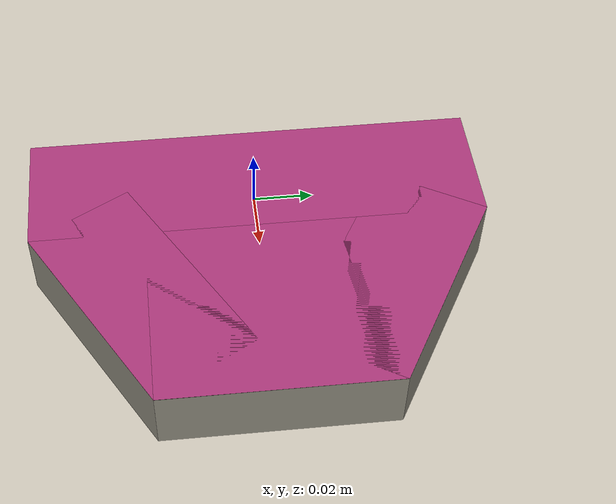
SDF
<?xml version="1.0"?>
<sdf version="1.6">
  <model name="sample_support_yellow">
  <static>false</static>
  <link name="base_plate">
      <collision name="base_plate_collision_1">
        <pose>0 0 0 0 0 0</pose>
        <geometry>
          <box><size>0.04295 0.150 0.022</size></box>
        </geometry>
      </collision>
      <collision name="base_plate_collision_2">
        <pose>0.05395 0 0 0 0 0</pose>
        <geometry>
          <box><size>0.06495 0.075 0.022</size></box>
        </geometry>
      </collision>
      <collision name="base_plate_collision_3">
        <pose>0.044575 0.04 0 0 0 2.61799387799</pose>
        <geometry>
          <box><size>0.075 0.0375 0.022</size></box>
        </geometry>
      </collision>
      <collision name="base_plate_collision_4">
        <pose>0.044575 -0.04 0 0 0 -2.61799387799</pose>
        <geometry>
          <box><size>0.075 0.0375 0.022</size></box>
        </geometry>
      </collision>
      <visual name="base_plate_visual_1">
        <pose>0 0 0 0 0 0</pose>
        <geometry>
          <box><size>0.04295 0.150 0.022</size></box>
        </geometry>
        <material>
          <ambient>0.71 0.69 0.63 1.0</ambient>
          <diffuse>0.71 0.69 0.63 1.0</diffuse>
          <specular>0.1 0.1 0.1 1</specular>
          <emissive>0 0 0 0</emissive>
        </material>
      </visual>
      <visual name="base_plate_1_color_cap">
        <pose>0 0 0.011 0 0 0</pose>
        <geometry>
          <box>
            <size>0.04295 0.150 0.0001</size>
          </box>
        </geometry>
        <material>
          <ambient>0.63 0.20 0.45 1</ambient>
          <diffuse>0.63 0.20 0.45 1</diffuse>
          <specular>0.05 0.05 0.05 1</specular>
          <emissive>0 0 0 0</emissive>
        </material>
      </visual>
      <visual name="base_plate_visual_2">
        <pose>0.05395 0 0 0 0 0</pose>
        <geometry>
          <box><size>0.06495 0.075 0.022</size></box>
        </geometry>
        <material>
          <ambient>0.71 0.69 0.63 1.0</ambient>
          <diffuse>0.71 0.69 0.63 1.0</diffuse>
          <specular>0.1 0.1 0.1 1</specular>
          <emissive>0 0 0 0</emissive>
        </material>
      </visual>
      <visual name="base_plate_2_color_cap">
        <pose>0.05395 0 0.011 0 0 0</pose>
        <geometry>
          <box>
            <size>0.06495 0.075 0.0001</size>
          </box>
        </geometry>
        <material>
          <ambient>0.63 0.20 0.45 1</ambient>
          <diffuse>0.63 0.20 0.45 1</diffuse>
          <specular>0.05 0.05 0.05 1</specular>
          <emissive>0 0 0 0</emissive>
        </material>
      </visual>
      <visual name="base_plate_visual_3">
        <pose>0.044575 0.04 0 0 0 2.61799387799</pose>
        <geometry>
          <box><size>0.075 0.0375 0.022</size></box>
        </geometry>
        <material>
          <ambient>0.71 0.69 0.63 1.0</ambient>
          <diffuse>0.71 0.69 0.63 1.0</diffuse>
          <specular>0.1 0.1 0.1 1</specular>
          <emissive>0 0 0 0</emissive>
        </material>
      </visual>
      <visual name="base_plate_3_color_cap">
        <pose>0.044575 0.04 0.011 0 0 2.61799387799</pose>
        <geometry>
          <box>
            <size>0.075 0.0375 0.0001</size>
          </box>
        </geometry>
        <material>
          <ambient>0.63 0.20 0.45 1</ambient>
          <diffuse>0.63 0.20 0.45 1</diffuse>
          <specular>0.05 0.05 0.05 1</specular>
          <emissive>0 0 0 0</emissive>
        </material>
      </visual>
      <visual name="base_plate_visual_4">
        <pose>0.044575 -0.04 0 0 0 -2.61799387799</pose>
        <geometry>
          <box><size>0.075 0.0375 0.022</size></box>
        </geometry>
        <material>
          <ambient>0.71 0.69 0.63 1.0</ambient>
          <diffuse>0.71 0.69 0.63 1.0</diffuse>
          <specular>0.1 0.1 0.1 1</specular>
          <emissive>0 0 0 0</emissive>
        </material>
      </visual>
      <visual name="base_plate_4_color_cap">
        <pose>0.044575 -0.04 0.011 0 0 -2.61799387799</pose>
        <geometry>
          <box>
            <size>0.075 0.0375 0.0001</size>
          </box>
        </geometry>
        <material>
          <ambient>0.63 0.20 0.45 1</ambient>
          <diffuse>0.63 0.20 0.45 1</diffuse>
          <specular>0.05 0.05 0.05 1</specular>
          <emissive>0 0 0 0</emissive>
        </material>
      </visual>
      <inertial>
        <mass>0.1</mass>
        <inertia>
          <ixx>0.000703</ixx><ixy>0</ixy><ixz>0</ixz>
          <iyy>0.000703</iyy><iyz>0</iyz>
          <izz>0.000703</izz>
        </inertia>
      </inertial>
    </link>
  </model>
</sdf>
